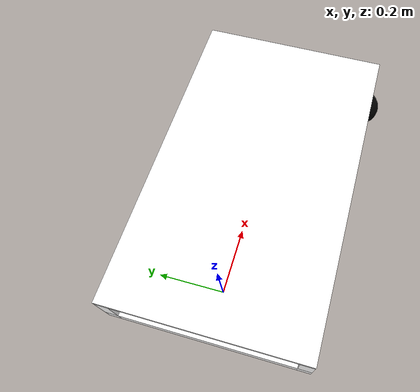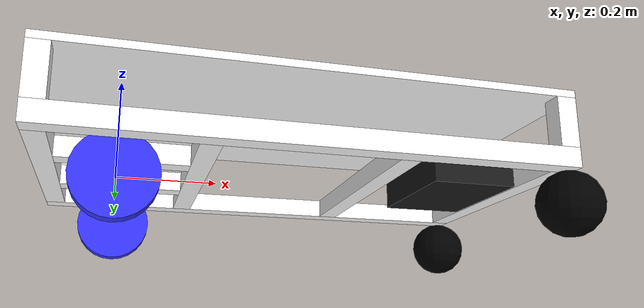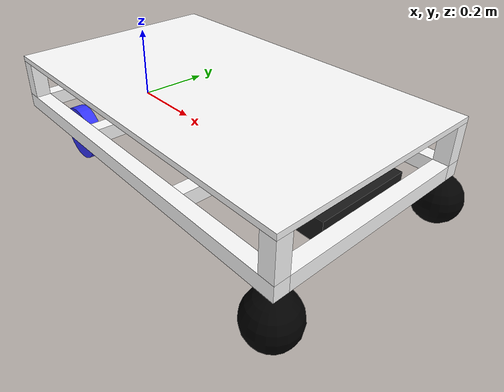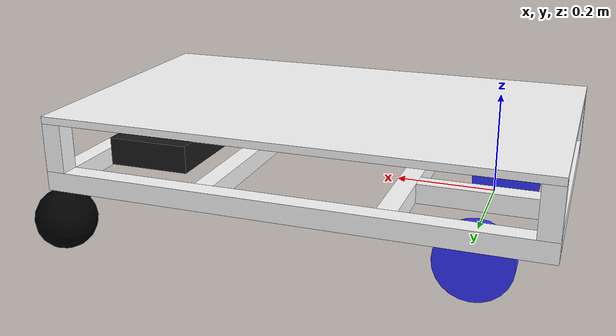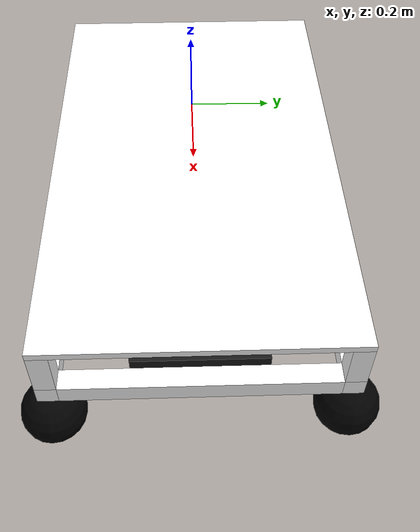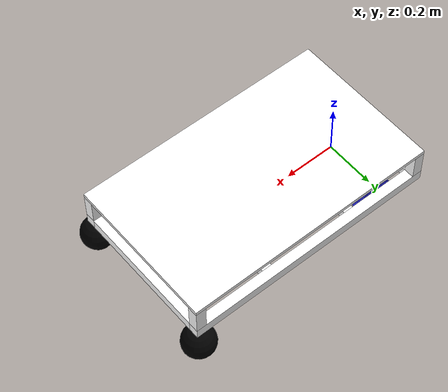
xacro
<?xml version="1.0"?>
<robot xmlns:xacro="http://www.ros.org/wiki/xacro" name="robot">

  <xacro:arg name="use_ros2_control" default="false"/>
  <xacro:arg name="sim_mode" default="false"/>
  <xacro:arg name="motor_device" default="/dev/ttyACM0"/>

  <xacro:include filename="robot_core.xacro"/>
  <xacro:include filename="lidar.xacro"/>

  <xacro:if value="$(arg sim_mode)">
    <xacro:include filename="gazebo_control.xacro"/>
  </xacro:if>

  <xacro:if value="$(arg use_ros2_control)">
    <xacro:include filename="ros2_control.xacro"/>
  </xacro:if>

</robot>

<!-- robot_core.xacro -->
<robot xmlns:xacro="http://www.ros.org/wiki/xacro"  name="robot">

    <xacro:include filename="intertial_macros.xacro"/>

    <!-- Drive-wheel dimensions (meters); separation is center-to-center. -->
    <xacro:property name="wheel_radius" value="0.0762"/>
    <xacro:property name="wheel_width" value="0.035306"/>
    <xacro:property name="wheel_separation" value="0.44"/>

    <material name ="white">
        <color rgba="1 1 1 1" />
    </material>

        <material name ="orange">
        <color rgba="1 0.3 0.1 1" />
    </material>

        <material name ="blue">
        <color rgba="0.2 0.2 1 1" />
    </material>

        <material name ="black">
        <color rgba="0 0 0 1" />
    </material>

    <material name="red">
        <color rgba="1 0 0 1"/>
    </material>

    <material name="dark_grey">
        <color rgba="0.1 0.1 0.1 1"/>
    </material>

    <xacro:macro name="chassis_frame_member" params="name xyz size">
        <visual name="${name}_visual">
            <origin xyz="${xyz}" rpy="0 0 0"/>
            <geometry>
                <box size="${size}"/>
            </geometry>
            <material name="white"/>
        </visual>

        <collision name="${name}_collision">
            <origin xyz="${xyz}" rpy="0 0 0"/>
            <geometry>
                <box size="${size}"/>
            </geometry>
        </collision>
    </xacro:macro>

    <!-- BASE LINK planar origin is the drive-wheel axle midpoint. -->

    <link name="base_link">

    </link>

        <!-- BASE_FOOTPRINT -->

    <joint name="base_footprint_joint" type="fixed">
        <parent link="base_link"/>
        <child link="base_footprint"/>
        <origin xyz="0 0 0" rpy="0 0 0"/>
    </joint>

    <link name="base_footprint">
    </link>

    <!-- CHASSIS LINK-->
    <joint name ="chassis_joint" type="fixed">
        <parent link="base_link"/>
        <child link= "chassis"/>
        <!-- Preserve the physical chassis pose after moving base_link 5 cm
             forward from its legacy location onto the drive axle. -->
        <origin xyz="-0.15 0 0"/>
    </joint>

    <link name="chassis">
        <xacro:chassis_frame_member name="left_side_rail" xyz="0.5 0.28 0.02" size="1.0 0.04 0.04"/>
        <xacro:chassis_frame_member name="right_side_rail" xyz="0.5 -0.28 0.02" size="1.0 0.04 0.04"/>
        <xacro:chassis_frame_member name="back_rail" xyz="0.02 0 0.02" size="0.04 0.52 0.04"/>
        <xacro:chassis_frame_member name="front_rail" xyz="0.98 0 0.02" size="0.04 0.52 0.04"/>
        <xacro:chassis_frame_member name="rear_cross_rail" xyz="0.305 0 0.02" size="0.04 0.52 0.04"/>
        <xacro:chassis_frame_member name="front_cross_rail" xyz="0.67 0 0.02" size="0.04 0.52 0.04"/>
        <xacro:chassis_frame_member name="rear_left_inner_rail" xyz="0.1625 0.1 0.02" size="0.245 0.04 0.04"/>
        <xacro:chassis_frame_member name="rear_right_inner_rail" xyz="0.1625 -0.1 0.02" size="0.245 0.04 0.04"/>

        <xacro:inertial_box mass="7.31553774" x="1.0" y="0.6" z="0.04">
            <origin xyz="0.5 0 0.02" rpy="0 0 0"/>
        </xacro:inertial_box>
    </link>

    <!-- ELECTRICAL BOX LINK -->
    <joint name="electrical_box_joint" type="fixed">
        <parent link="chassis"/>
        <child link="electrical_box"/>
        <origin xyz="0.87 0 0.032" rpy="0 0 0"/>
    </joint>

    <link name="electrical_box">
        <visual>
            <geometry>
                <box size="0.18 0.26 0.06"/>
            </geometry>
            <material name="dark_grey"/>
        </visual>

        <collision>
            <geometry>
                <box size="0.18 0.26 0.06"/>
            </geometry>
        </collision>

        <xacro:inertial_box mass="1.0" x="0.18" y="0.26" z="0.06">
            <origin xyz="0 0 0" rpy="0 0 0"/>
        </xacro:inertial_box>
    </link>

    <!-- LEFT WHEEL LINK -->
    <joint name="left_wheel_joint" type="continuous">
        <parent link="base_link"/>
        <child link="left_wheel"/>
        <origin xyz="0 ${wheel_separation / 2} -0.0538" rpy="-${pi/2} 0 0"/>
        <axis xyz="0 0 1"/>
        <limit effort="5.0" velocity="13.8"/>
    </joint>

    <link name="left_wheel">
        <visual>
            <geometry>
                <cylinder length="${wheel_width}" radius="${wheel_radius}" />
            </geometry>
            <material name="blue"/>
        </visual>

        <collision>
            <geometry>
                <cylinder length="${wheel_width}" radius="${wheel_radius}" />
            </geometry>
        </collision>

        <xacro:inertial_cylinder mass="0.9" length="${wheel_width}" radius="${wheel_radius}">
            <origin xyz="0 0 0" rpy="0 0 0"/>
        </xacro:inertial_cylinder>
    </link>

    <!-- RIGHT WHEEL LINK -->
    <joint name="right_wheel_joint" type="continuous">
        <parent link="base_link"/>
        <child link="right_wheel"/>
        <origin xyz="0 -${wheel_separation / 2} -0.0538" rpy="${pi/2} 0 0"/>
        <axis xyz="0 0 -1"/>
        <limit effort="5.0" velocity="13.8"/>
    </joint>

    <link name="right_wheel">
        <visual>
            <geometry>
                <cylinder length="${wheel_width}" radius="${wheel_radius}" />
            </geometry>
            <material name="blue"/>
        </visual>
        <collision>
            <geometry>
                <cylinder length="${wheel_width}" radius="${wheel_radius}" />
            </geometry>
        </collision>

        <xacro:inertial_cylinder mass="0.9" length="${wheel_width}" radius="${wheel_radius}">
            <origin xyz="0 0 0" rpy="0 0 0"/>
        </xacro:inertial_cylinder>
    </link>

    <!-- CASTER LEFT LINK -->
    <joint name="caster_wheel_left_joint" type="fixed">
        <parent link="chassis"/>
        <child link="caster_wheel_left"/>
        <origin xyz="0.98 0.28 -0.0665" rpy="0 0 0"/>
    </joint>

    <link name="caster_wheel_left">
        <visual>
            <geometry>
                <sphere radius="0.0635" />
            </geometry>
            <material name="black" />
        </visual>

        <collision>
            <geometry>
                <sphere radius="0.0635" />
            </geometry>
        </collision>

        <xacro:inertial_sphere mass="0.9" radius="0.0635">
            <origin xyz="0 0 0" rpy="0 0 0"/>
        </xacro:inertial_sphere>
    </link>

    <gazebo reference="caster_wheel_left">
        <mu1 value="0.0"/>
        <mu2 value="0.0"/>
    </gazebo>

        <!-- CASTER RIGHT LINK -->
    <joint name="caster_wheel_right_joint" type="fixed">
        <parent link="chassis"/>
        <child link="caster_wheel_right"/>
        <origin xyz="0.98 -0.28 -0.0665" rpy="0 0 0"/>
    </joint>

    <link name="caster_wheel_right">
        <visual>
            <geometry>
                <sphere radius="0.0635" />
            </geometry>
            <material name="black" />
        </visual>

        <collision>
            <geometry>
                <sphere radius="0.0635" />
            </geometry>
        </collision>

                <xacro:inertial_sphere mass="0.9" radius="0.0635">
            <origin xyz="0 0 0" rpy="0 0 0"/>
        </xacro:inertial_sphere>
    </link>

    <gazebo reference="caster_wheel_right">
        <mu1 value="0.0"/>
        <mu2 value="0.0"/>
    </gazebo>

    <!-- SUPPORT POST BACK LEFT LINK -->
    <joint name="support_back_left_joint" type="fixed">
        <parent link="chassis"/>
        <child link="support_back_left_block"/>
        <origin xyz="0.02 0.28 0.09" rpy="0 0 0"/>
    </joint>

    <link name="support_back_left_block">
        <visual>
            <geometry>
                <box size="0.04 0.04 0.1" />
            </geometry>
            <material name="white" />
        </visual>

        <collision>
            <geometry>
                <box size="0.04 0.04 0.1" />
            </geometry>
        </collision>

        <xacro:inertial_box mass="0.25" x="0.04" y="0.04" z="0.1">
            <origin xyz="0 0 0" rpy="0 0 0"/>
        </xacro:inertial_box>
    </link>

    <!-- SUPPORT POST BACK RIGHT LINK -->
    <joint name="support_back_right_joint" type="fixed">
        <parent link="chassis"/>
        <child link="support_back_right_block"/>
        <origin xyz="0.02 -0.28 0.09" rpy="0 0 0"/>
    </joint>

    <link name="support_back_right_block">
        <visual>
            <geometry>
                <box size="0.04 0.04 0.1" />
            </geometry>
            <material name="white" />
        </visual>

        <collision>
            <geometry>
                <box size="0.04 0.04 0.1" />
            </geometry>
        </collision>

        <xacro:inertial_box mass="0.25" x="0.04" y="0.04" z="0.1">
            <origin xyz="0 0 0" rpy="0 0 0"/>
        </xacro:inertial_box>
    </link>

    <!-- SUPPORT POST FRONT LEFT LINK -->
    <joint name="support_front_left_joint" type="fixed">
        <parent link="chassis"/>
        <child link="support_front_left_block"/>
        <origin xyz="0.98 0.28 0.09" rpy="0 0 0"/>
    </joint>

    <link name="support_front_left_block">
        <visual>
            <geometry>
                <box size="0.04 0.04 0.1" />
            </geometry>
            <material name="white" />
        </visual>

        <collision>
            <geometry>
                <box size="0.04 0.04 0.1" />
            </geometry>
        </collision>

        <xacro:inertial_box mass="0.25" x="0.04" y="0.04" z="0.1">
            <origin xyz="0 0 0" rpy="0 0 0"/>
        </xacro:inertial_box>
    </link>

    <!-- SUPPORT POST FRONT RIGHT LINK -->
    <joint name="support_front_right_joint" type="fixed">
        <parent link="chassis"/>
        <child link="support_front_right_block"/>
        <origin xyz="0.98 -0.28 0.09" rpy="0 0 0"/>
    </joint>

    <link name="support_front_right_block">
        <visual>
            <geometry>
                <box size="0.04 0.04 0.1" />
            </geometry>
            <material name="white" />
        </visual>

        <collision>
            <geometry>
                <box size="0.04 0.04 0.1" />
            </geometry>
        </collision>

        <xacro:inertial_box mass="0.25" x="0.04" y="0.04" z="0.1">
            <origin xyz="0 0 0" rpy="0 0 0"/>
        </xacro:inertial_box>
    </link>

    <!-- PLASTIC TOP BOARD LINK -->
    <joint name="table_top_joint" type="fixed">
        <parent link="chassis"/>
        <child link="table_top_block"/>
        <origin xyz="0.5 0 0.1475" rpy="0 0 0"/>
    </joint>

    <link name="table_top_block">
        <visual>
            <geometry>
                <box size="1.0 0.6 0.015"/>
            </geometry>
            <material name="white"/>
        </visual>

        <collision>
            <geometry>
                <box size="1.0 0.6 0.015" />
            </geometry>
        </collision>

        <xacro:inertial_box mass="1.0" x="1.0" y="0.6" z="0.015">
            <origin xyz="0 0 0" rpy="0 0 0"/>
        </xacro:inertial_box>
    </link>

</robot>

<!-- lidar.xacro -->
<robot xmlns:xacro="http://www.ros.org/wiki/xacro" >

    <joint name="laser_joint" type="fixed">
        <parent link="chassis"/>
        <child link="laser_frame"/>
        <!-- The drive axle is 0.15 m ahead of the chassis origin, placing
             the measured lidar center 0.73 m ahead of the axle. -->
        <origin xyz="0.88 0 0.082" rpy="0 0 0"/>
    </joint>

    <link name="laser_frame">
        <visual>
            <geometry>
                <cylinder radius="0.05" length="0.04"/>
            </geometry>
            <material name="red"/>
        </visual>
        <collision>
            <geometry>
                <cylinder radius="0.05" length="0.04"/>
            </geometry>
        </collision>
        <xacro:inertial_cylinder mass="0.1" length="0.04" radius="0.05">
            <origin xyz="0 0 0" rpy="0 0 0"/>
        </xacro:inertial_cylinder>
    </link>

    <gazebo reference="laser_frame">
        <sensor name="gpu_lidar" type="gpu_lidar">
            <topic>/scan</topic>
            <gz_frame_id>laser_frame</gz_frame_id>
            <update_rate>7</update_rate>
            <always_on>true</always_on>
            <visualize>true</visualize>
            <lidar>
                <scan>
                    <horizontal>
                        <samples>720</samples>
                        <resolution>1</resolution>
                        <min_angle>-${pi}</min_angle>
                        <max_angle>${pi}</max_angle>
                    </horizontal>
                </scan>
                <range>
                    <min>0.1</min>
                    <max>12.0</max>
                    <resolution>0.01</resolution>
                </range>
            </lidar>
        </sensor>
    </gazebo>

</robot>
